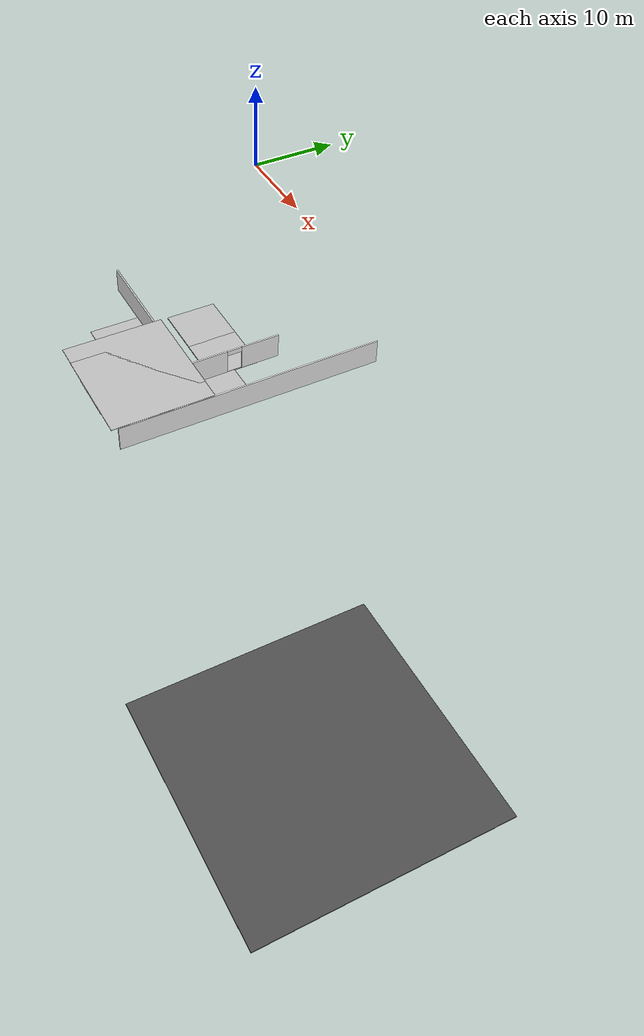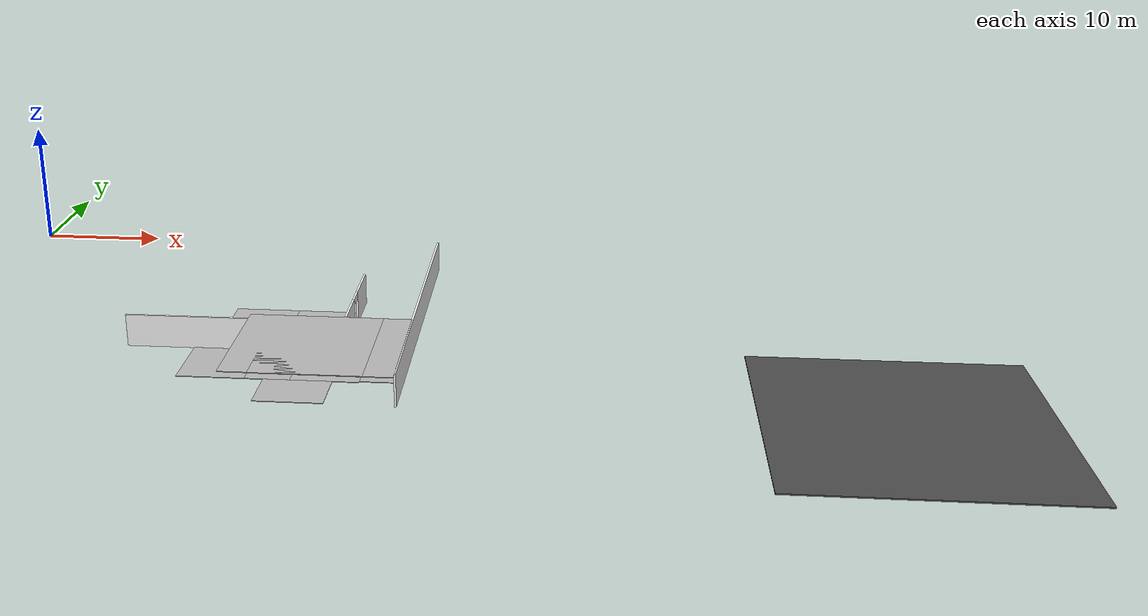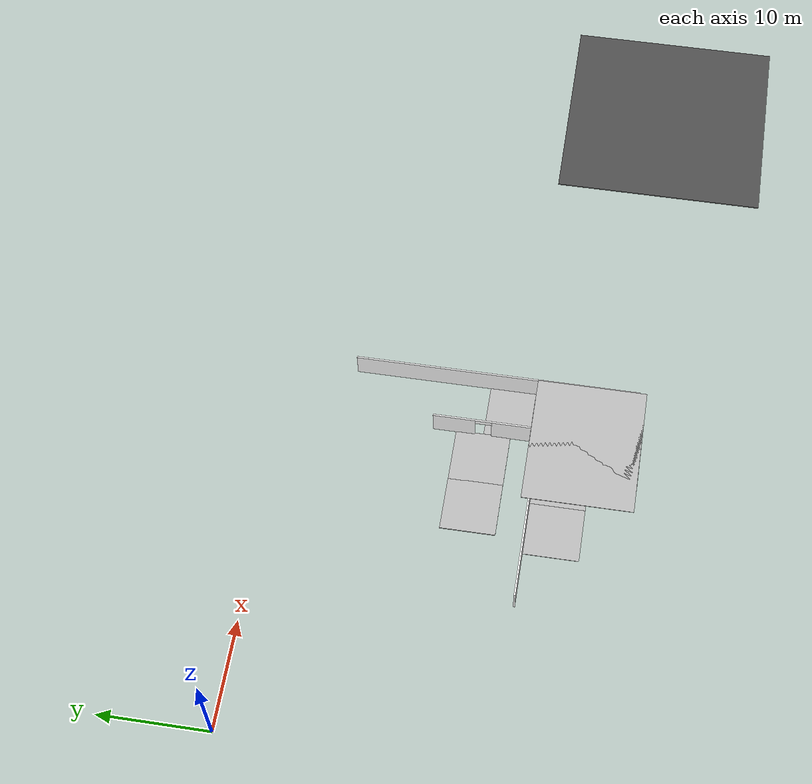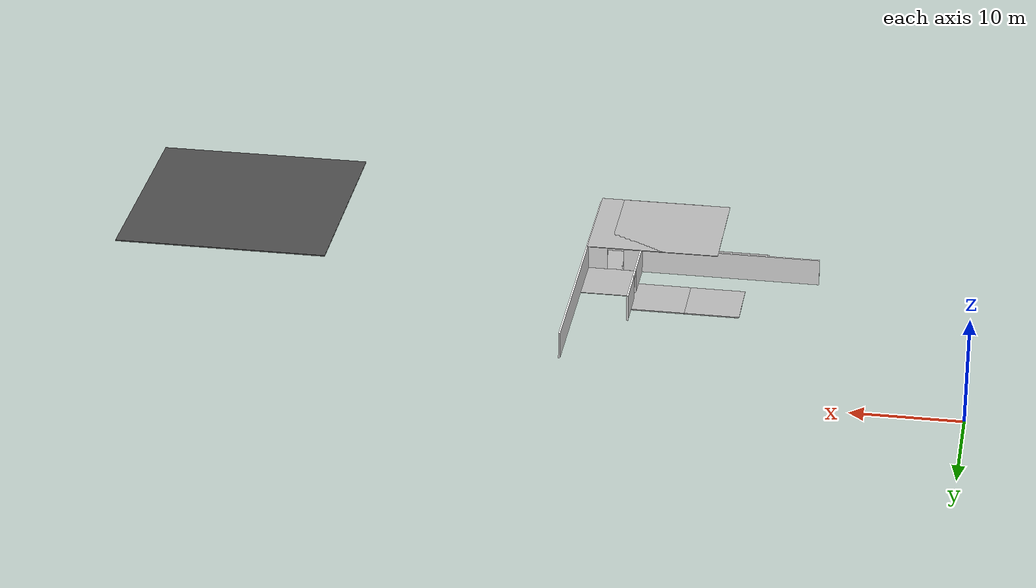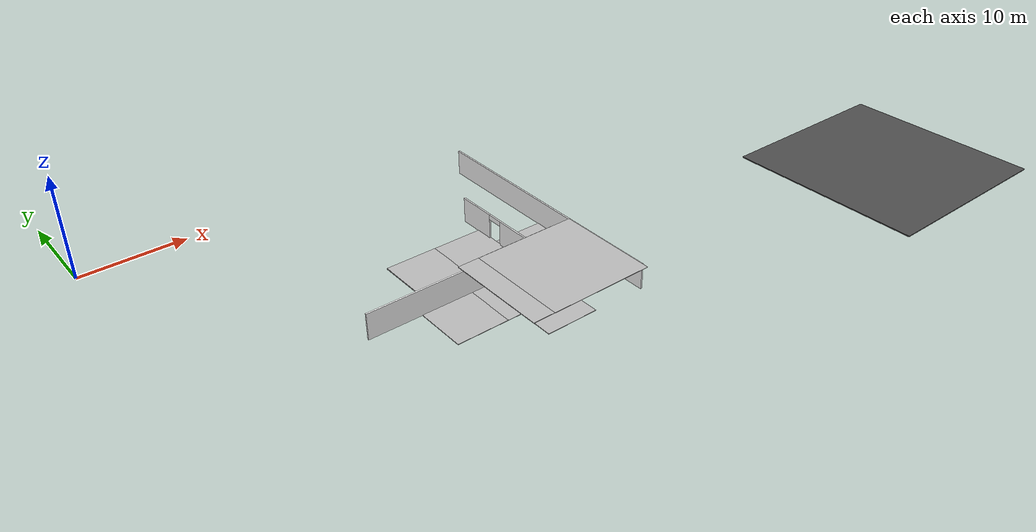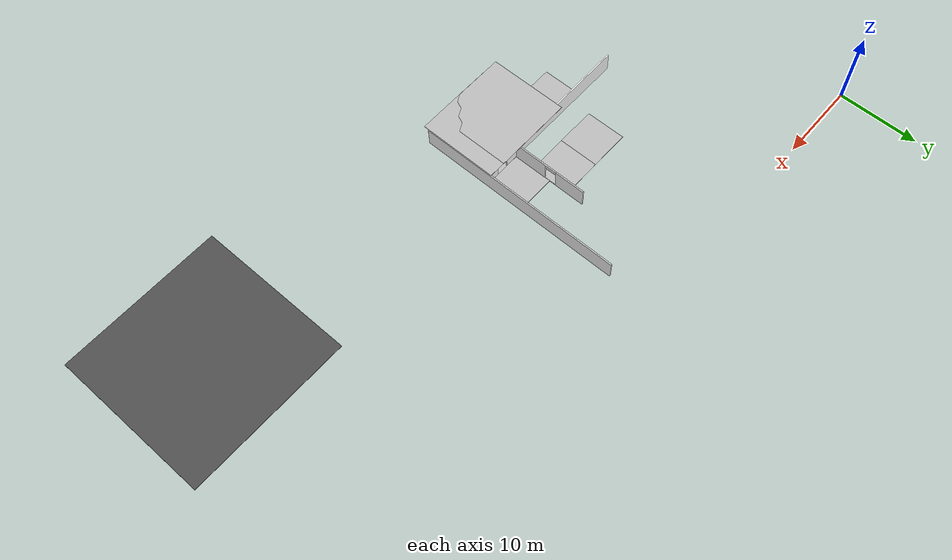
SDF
<sdf version="1.6">
 <world name="default">
  <model name="mainoffice">
   <pose>42.7555 15.4488 0 0 -0 0</pose>
   <link name="Wall_29">
    <collision name="Wall_29_Collision">
     <geometry><box><size>26.25 0.15 2.5</size></box></geometry>
     <pose>0 0 1.25 0 -0 0</pose>
    </collision>
    <visual name="Wall_29_Visual">
     <pose>0 0 1.25 0 -0 0</pose>
     <geometry><box><size>26.25 0.15 2.5</size></box></geometry>
     <material>
      <script>
       <uri>model://office_env/materials/scripts</uri>
       <uri>model://office_env/materials/textures</uri>
       <name>wall</name>
      </script>
      <ambient>1 1 1 1</ambient>
     </material>
    </visual>
    <pose>-6.49909 -34.275 0 0 0 -1.5708</pose>
   </link>
   <link name="Wall_32">
    <collision name="Wall_32_Collision">
     <geometry><box><size>16.5 0.15 2.5</size></box></geometry>
     <pose>0 0 1.25 0 -0 0</pose>
    </collision>
    <visual name="Wall_32_Visual">
     <pose>0 0 1.25 0 -0 0</pose>
     <geometry><box><size>16.5 0.15 2.5</size></box></geometry>
     <material>
      <script>
       <uri>model://office_env/materials/scripts</uri>
       <uri>model://office_env/materials/textures</uri>
       <name>wall</name>
      </script>
      <ambient>1 1 1 1</ambient>
     </material>
    </visual>
    <pose>-19.6741 -38.725 0 0 -0 0</pose>
   </link>
   <link name="Wall_33">
    <pose>-11.4991 -33.925 0 0 -0 1.5708</pose>
    <visual name="Wall_33_Visual_0">
     <pose>-2.68364 0 1.25 0 -0 0</pose>
     <geometry><box><size>4.38272 0.15 2.5</size></box></geometry>
     <material>
      <script>
       <uri>model://office_env/materials/scripts</uri>
       <uri>model://office_env/materials/textures</uri>
       <name>wall</name>
      </script>
      <ambient>1 1 1 1</ambient>
     </material>
    </visual>
    <collision name="Wall_33_Collision_0">
     <geometry><box><size>4.38272 0.15 2.5</size></box></geometry>
     <pose>-2.68364 0 1.25 0 -0 0</pose>
    </collision>
    <visual name="Wall_33_Visual_1">
     <pose>2.94136 0 1.25 0 -0 0</pose>
     <geometry><box><size>3.86728 0.15 2.5</size></box></geometry>
     <material>
      <script>
       <uri>model://office_env/materials/scripts</uri>
       <uri>model://office_env/materials/textures</uri>
       <name>wall</name>
      </script>
      <ambient>1 1 1 1</ambient>
     </material>
    </visual>
    <collision name="Wall_33_Collision_1">
     <geometry><box><size>3.86728 0.15 2.5</size></box></geometry>
     <pose>2.94136 0 1.25 0 -0 0</pose>
    </collision>
    <visual name="Wall_33_Visual_2">
     <pose>0.257717 0 2.25 0 -0 0</pose>
     <geometry><box><size>1.5 0.15 0.5</size></box></geometry>
     <material>
      <script>
       <uri>model://office_env/materials/scripts</uri>
       <uri>model://office_env/materials/textures</uri>
       <name>wall</name>
      </script>
      <ambient>1 1 1 1</ambient>
     </material>
    </visual>
    <collision name="Wall_33_Collision_2">
     <geometry><box><size>1.5 0.15 0.5</size></box></geometry>
     <pose>0.257717 0 2.25 0 -0 0</pose>
    </collision>
   </link>
   <link name="Wall_53">
    <pose>-9.07409 -38.725 0 0 -0 0</pose>
    <visual name="Wall_53_Visual_0">
     <pose>-1.62716 0 1.25 0 -0 0</pose>
     <geometry><box><size>1.74568 0.15 2.5</size></box></geometry>
     <material>
      <script>
       <uri>model://office_env/materials/scripts</uri>
       <uri>model://office_env/materials/textures</uri>
       <name>wall</name>
      </script>
      <ambient>1 1 1 1</ambient>
     </material>
    </visual>
    <collision name="Wall_53_Collision_0">
     <geometry><box><size>1.74568 0.15 2.5</size></box></geometry>
     <pose>-1.62716 0 1.25 0 -0 0</pose>
    </collision>
    <visual name="Wall_53_Visual_1">
     <pose>1.62284 0 1.25 0 -0 0</pose>
     <geometry><box><size>1.75432 0.15 2.5</size></box></geometry>
     <material>
      <script>
       <uri>model://office_env/materials/scripts</uri>
       <uri>model://office_env/materials/textures</uri>
       <name>wall</name>
      </script>
      <ambient>1 1 1 1</ambient>
     </material>
    </visual>
    <collision name="Wall_53_Collision_1">
     <geometry><box><size>1.75432 0.15 2.5</size></box></geometry>
     <pose>1.62284 0 1.25 0 -0 0</pose>
    </collision>
    <visual name="Wall_53_Visual_2">
     <pose>-0.00432 0 2.25 0 -0 0</pose>
     <geometry><box><size>1.5 0.15 0.5</size></box></geometry>
     <material>
      <script>
       <uri>model://office_env/materials/scripts</uri>
       <uri>model://office_env/materials/textures</uri>
       <name>wall</name>
      </script>
      <ambient>1 1 1 1</ambient>
     </material>
    </visual>
    <collision name="Wall_53_Collision_2">
     <geometry><box><size>1.5 0.15 0.5</size></box></geometry>
     <pose>-0.00432 0 2.25 0 -0 0</pose>
    </collision>
   </link>
   <static>1</static>
  </model>
  <model name="asphalt_plane">
   <static>1</static>
   <link name="link">
    <collision name="collision"><geometry><box><size>20 20 0.1</size></box></geometry></collision>
    <visual name="visual">
     <cast_shadows>0</cast_shadows>
     <geometry><box><size>20 20 0.1</size></box></geometry>
     <material>
      <script>
       <uri>model://asphalt_plane/materials/scripts</uri>
       <uri>model://asphalt_plane/materials/textures</uri>
       <name>vrc/asphalt</name>
      </script>
     </material>
    </visual>
   </link>
   <pose>70.7475 -31.5972 0 0 -0 0</pose>
  </model>
  <model name="Floor_36">
   <link name="main">
    <pose>0 0 0.01 0 -0 0</pose>
    <collision name="main_Collision"><geometry><box><size>5 5 0.05</size></box></geometry></collision>
    <visual name="main_Visual">
     <geometry><box><size>5 5 0.05</size></box></geometry>
     <material>
      <script>
       <uri>model://Floor_verysmall/materials/scripts</uri>
       <uri>model://Floor_verysmall/materials/textures</uri>
       <name>floor</name>
      </script>
     </material>
    </visual>
   </link>
   <static>1</static>
   <pose>33.79 -20.7523 0 0 -0 0</pose>
  </model>
  <model name="Floor_41">
   <link name="main">
    <pose>0 0 0.01 0 -0 0</pose>
    <collision name="main_Collision"><geometry><box><size>5 5 0.05</size></box></geometry></collision>
    <visual name="main_Visual">
     <geometry><box><size>5 5 0.05</size></box></geometry>
     <material>
      <script>
       <uri>model://Floor_verysmall/materials/scripts</uri>
       <uri>model://Floor_verysmall/materials/textures</uri>
       <name>floor</name>
      </script>
     </material>
    </visual>
   </link>
   <static>1</static>
   <pose>22.414 -25.8333 0 0 -0 0</pose>
  </model>
  <model name="Floor_42">
   <link name="main">
    <pose>0 0 0.01 0 -0 0</pose>
    <collision name="main_Collision"><geometry><box><size>5 5 0.05</size></box></geometry></collision>
    <visual name="main_Visual">
     <geometry><box><size>5 5 0.05</size></box></geometry>
     <material>
      <script>
       <uri>model://Floor_verysmall/materials/scripts</uri>
       <uri>model://Floor_verysmall/materials/textures</uri>
       <name>floor</name>
      </script>
     </material>
    </visual>
   </link>
   <static>1</static>
   <pose>27.3802 -25.8391 0 0 -0 0</pose>
  </model>
  <model name="Floor_43">
   <link name="main">
    <pose>0 0 0.01 0 -0 0</pose>
    <collision name="main_Collision"><geometry><box><size>5 5 0.05</size></box></geometry></collision>
    <visual name="main_Visual">
     <geometry><box><size>5 5 0.05</size></box></geometry>
     <material>
      <script>
       <uri>model://Floor_verysmall/materials/scripts</uri>
       <uri>model://Floor_verysmall/materials/textures</uri>
       <name>floor</name>
      </script>
     </material>
    </visual>
   </link>
   <static>1</static>
   <pose>33.7535 -25.695 0 0 -0 0</pose>
  </model>
  <model name="Floor_44">
   <link name="main">
    <pose>0 0 0.01 0 -0 0</pose>
    <collision name="main_Collision"><geometry><box><size>5 5 0.05</size></box></geometry></collision>
    <visual name="main_Visual">
     <geometry><box><size>5 5 0.05</size></box></geometry>
     <material>
      <script>
       <uri>model://Floor_verysmall/materials/scripts</uri>
       <uri>model://Floor_verysmall/materials/textures</uri>
       <name>floor</name>
      </script>
     </material>
    </visual>
   </link>
   <static>1</static>
   <pose>30.6656 -25.8356 0 0 -0 0</pose>
  </model>
  <model name="Floor_46">
   <link name="main">
    <pose>0 0 0.01 0 -0 0</pose>
    <collision name="main_Collision"><geometry><box><size>5 5 0.05</size></box></geometry></collision>
    <visual name="main_Visual">
     <geometry><box><size>5 5 0.05</size></box></geometry>
     <material>
      <script>
       <uri>model://Floor_verysmall/materials/scripts</uri>
       <uri>model://Floor_verysmall/materials/textures</uri>
       <name>floor</name>
      </script>
     </material>
    </visual>
   </link>
   <static>1</static>
   <pose>28.7442 -29.3242 0 0 -0 0</pose>
  </model>
  <model name="outdoor_plane_25">
   <static>1</static>
   <link name="link">
    <collision name="collision"><geometry><box><size>5 5 0.1</size></box></geometry></collision>
    <visual name="visual">
     <cast_shadows>0</cast_shadows>
     <geometry><box><size>5 5 0.1</size></box></geometry>
     <material>
      <script>
       <uri>model://outdoor_planesmall/materials/scripts</uri>
       <uri>model://outdoor_planesmall/materials/textures</uri>
       <name>outdss/Image</name>
      </script>
     </material>
    </visual>
   </link>
   <pose>28.798 -18.2335 0 0 -0 0</pose>
  </model>
  <model name="outdoor_plane_26">
   <static>1</static>
   <link name="link">
    <collision name="collision"><geometry><box><size>5 5 0.1</size></box></geometry></collision>
    <visual name="visual">
     <cast_shadows>0</cast_shadows>
     <geometry><box><size>5 5 0.1</size></box></geometry>
     <material>
      <script>
       <uri>model://outdoor_planesmall/materials/scripts</uri>
       <uri>model://outdoor_planesmall/materials/textures</uri>
       <name>outdss/Image</name>
      </script>
     </material>
    </visual>
   </link>
   <pose>23.8351 -18.2234 0 0 -0 0</pose>
  </model>
  <model name="Floor_3_clone_19">
   <link name="main">
    <pose>0 0 0.01 0 -0 0</pose>
    <collision name="main_Collision"><geometry><box><size>10 10 0.05</size></box></geometry></collision>
    <visual name="main_Visual">
     <geometry><box><size>10 10 0.05</size></box></geometry>
     <material>
      <script>
       <uri>model://Floor_small/materials/scripts</uri>
       <uri>model://Floor_small/materials/textures</uri>
       <name>floor</name>
      </script>
     </material>
    </visual>
   </link>
   <static>1</static>
   <pose>29.1439 -27.5658 2.5 0 -0 0</pose>
  </model>
  <model name="Floor_3_clone_20">
   <link name="main">
    <pose>0 0 0.01 0 -0 0</pose>
    <collision name="main_Collision"><geometry><box><size>10 10 0.05</size></box></geometry></collision>
    <visual name="main_Visual">
     <geometry><box><size>10 10 0.05</size></box></geometry>
     <material>
      <script>
       <uri>model://Floor_small/materials/scripts</uri>
       <uri>model://Floor_small/materials/textures</uri>
       <name>floor</name>
      </script>
     </material>
    </visual>
   </link>
   <static>1</static>
   <pose>31.2407 -27.588 2.5 0 -0 0</pose>
  </model>
 </world>
</sdf>
